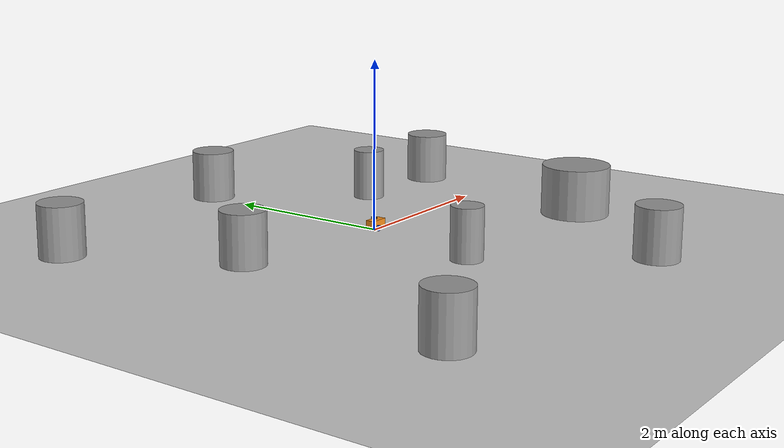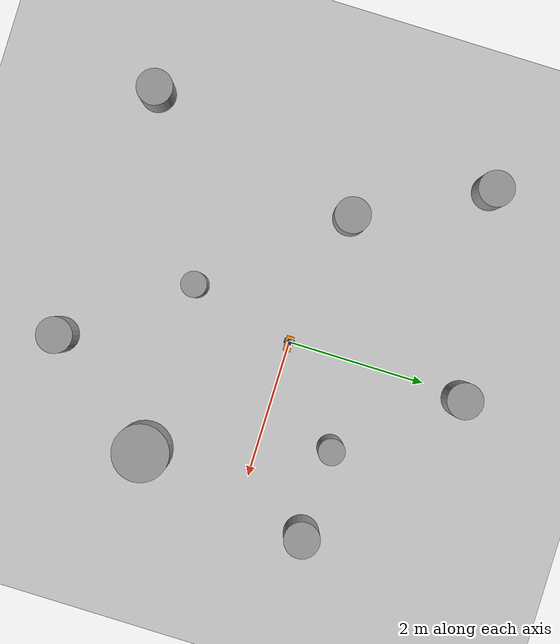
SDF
<sdf version="1.7">
 <world name="default">
  <light name="sun" type="directional">
   <pose>0 0 10 0 -0 0</pose>
   <diffuse>0.8 0.8 0.8 1</diffuse>
   <specular>0.2 0.2 0.2 1</specular>
   <attenuation>
    <range>1000</range>
    <constant>0.9</constant>
    <linear>0.01</linear>
    <quadratic>0.001</quadratic>
   </attenuation>
   <direction>-0.5 0.1 -0.9</direction>
   <spot><inner_angle>0</inner_angle><outer_angle>0</outer_angle><falloff>0</falloff></spot>
  </light>
  <model name="ground_plane">
   <static>1</static>
   <link name="link">
    <collision name="collision">
     <geometry><plane><normal>0 0 1</normal><size>100 100</size></plane></geometry>
     <surface>
      <contact><collide_bitmask>65535</collide_bitmask></contact>
      <friction><ode><mu>100</mu><mu2>50</mu2></ode></friction>
     </surface>
    </collision>
    <visual name="visual">
     <cast_shadows>0</cast_shadows>
     <geometry><plane><normal>0 0 1</normal><size>100 100</size></plane></geometry>
     <material>
      <script><uri>file://media/materials/scripts/gazebo.material</uri><name>Gazebo/Grey</name></script>
     </material>
    </visual>
   </link>
  </model>
  <gravity>0 0 -9.8</gravity>
  <magnetic_field>6e-06 2.3e-05 -4.2e-05</magnetic_field>
  <atmosphere type="adiabatic"/>
  <physics type="ode">
   <max_step_size>0.001</max_step_size>
   <real_time_factor>1</real_time_factor>
   <real_time_update_rate>1000</real_time_update_rate>
  </physics>
  <scene><ambient>0.4 0.4 0.4 1</ambient><background>0.7 0.7 0.7 1</background><shadows>1</shadows></scene>
  <audio><device>default</device></audio>
  <spherical_coordinates>
   <surface_model>EARTH_WGS84</surface_model>
   <latitude_deg>0</latitude_deg>
   <longitude_deg>0</longitude_deg>
   <elevation>0</elevation>
   <heading_deg>0</heading_deg>
  </spherical_coordinates>
  <model name="my_bot">
   <link name="base_link">
    <inertial>
     <pose>0.022817 0 0.055352 0 -0 0</pose>
     <mass>0.71</mass>
     <inertia>
      <ixx>0.00193831</ixx>
      <ixy>0</ixy>
      <ixz>0.000395704</ixz>
      <iyy>0.00367518</iyy>
      <iyz>0</iyz>
      <izz>0.0028686</izz>
     </inertia>
    </inertial>
    <collision name="base_link_fixed_joint_lump__chassis_collision">
     <pose>0.03 0 0.035 0 -0 0</pose>
     <geometry><box><size>0.22 0.11 0.11</size></box></geometry>
    </collision>
    <collision name="base_link_fixed_joint_lump__caster_wheel_collision_1">
     <pose>0.12 0 -0.02 0 -0 0</pose>
     <geometry><sphere><radius>0.015</radius></sphere></geometry>
     <surface><friction><ode><mu>0.001</mu><mu2>0.001</mu2></ode></friction></surface>
    </collision>
    <collision name="base_link_fixed_joint_lump__laser_frame_collision_2">
     <pose>0 0 0.11 0 -0 0</pose>
     <geometry><cylinder><length>0.04</length><radius>0.05</radius></cylinder></geometry>
    </collision>
    <visual name="base_link_fixed_joint_lump__chassis_visual">
     <pose>0.03 0 0.035 0 -0 0</pose>
     <geometry><box><size>0.22 0.11 0.11</size></box></geometry>
     <material>
      <script><name>Gazebo/Orange</name><uri>file://media/materials/scripts/gazebo.material</uri></script>
     </material>
    </visual>
    <visual name="base_link_fixed_joint_lump__caster_wheel_visual_1">
     <pose>0.12 0 -0.02 0 -0 0</pose>
     <geometry><sphere><radius>0.015</radius></sphere></geometry>
     <material>
      <script><name>Gazebo/White</name><uri>file://media/materials/scripts/gazebo.material</uri></script>
     </material>
    </visual>
    <visual name="base_link_fixed_joint_lump__laser_frame_visual_2">
     <pose>0 0 0.11 0 -0 0</pose>
     <geometry><cylinder><length>0.02</length><radius>0.035</radius></cylinder></geometry>
     <material>
      <script><name>Gazebo/Black</name><uri>file://media/materials/scripts/gazebo.material</uri></script>
     </material>
    </visual>
    <sensor name="laser" type="ray">
     <visualize>1</visualize>
     <update_rate>10</update_rate>
     <ray>
      <scan>
       <horizontal>
        <samples>360</samples>
        <min_angle>-3.14</min_angle>
        <max_angle>3.14</max_angle>
        <resolution>1</resolution>
       </horizontal>
       <vertical><samples>1</samples><min_angle>0</min_angle><max_angle>0</max_angle></vertical>
      </scan>
      <range><min>0.3</min><max>12</max></range>
     </ray>
     <plugin name="laser_controller" filename="libgazebo_ros_ray_sensor.so">
      <ros><argument>~/out:=scan</argument></ros>
      <output_type>sensor_msgs/LaserScan</output_type>
      <frame_name>laser_frame</frame_name>
     </plugin>
     <pose>0 0 0.11 0 -0 0</pose>
    </sensor>
   </link>
   <joint name="left_wheel_joint" type="revolute">
    <pose relative_to="base_link">0 0.06 0 -1.5708 0 0</pose>
    <parent>base_link</parent>
    <child>left_wheel</child>
    <axis>
     <xyz>0 0 1</xyz>
     <limit><lower>-1e+16</lower><upper>1e+16</upper></limit>
     <dynamics><spring_reference>0</spring_reference><spring_stiffness>0</spring_stiffness></dynamics>
    </axis>
   </joint>
   <link name="left_wheel">
    <pose relative_to="left_wheel_joint">0 0 0 0 -0 0</pose>
    <inertial>
     <mass>0.05</mass>
     <inertia>
      <ixx>1.81292e-05</ixx>
      <ixy>0</ixy>
      <ixz>0</ixz>
      <iyy>1.81292e-05</iyy>
      <iyz>0</iyz>
      <izz>3.0625e-05</izz>
     </inertia>
    </inertial>
    <collision name="left_wheel_collision">
     <geometry><sphere><radius>0.035</radius></sphere></geometry>
    </collision>
    <visual name="left_wheel_visual">
     <geometry><cylinder><length>0.026</length><radius>0.035</radius></cylinder></geometry>
     <material>
      <script><name>Gazebo/Blue</name><uri>file://media/materials/scripts/gazebo.material</uri></script>
     </material>
    </visual>
   </link>
   <joint name="right_wheel_joint" type="revolute">
    <pose relative_to="base_link">0 -0.06 0 1.5708 -0 0</pose>
    <parent>base_link</parent>
    <child>right_wheel</child>
    <axis>
     <xyz>0 0 -1</xyz>
     <limit><lower>-1e+16</lower><upper>1e+16</upper></limit>
     <dynamics><spring_reference>0</spring_reference><spring_stiffness>0</spring_stiffness></dynamics>
    </axis>
   </joint>
   <link name="right_wheel">
    <pose relative_to="right_wheel_joint">0 0 0 0 -0 0</pose>
    <inertial>
     <mass>0.05</mass>
     <inertia>
      <ixx>1.81292e-05</ixx>
      <ixy>0</ixy>
      <ixz>0</ixz>
      <iyy>1.81292e-05</iyy>
      <iyz>0</iyz>
      <izz>3.0625e-05</izz>
     </inertia>
    </inertial>
    <collision name="right_wheel_collision">
     <geometry><sphere><radius>0.035</radius></sphere></geometry>
    </collision>
    <visual name="right_wheel_visual">
     <geometry><cylinder><length>0.026</length><radius>0.035</radius></cylinder></geometry>
     <material>
      <script><name>Gazebo/Blue</name><uri>file://media/materials/scripts/gazebo.material</uri></script>
     </material>
    </visual>
   </link>
   <static>0</static>
   <plugin name="gazebo_ros2_control" filename="libgazebo_ros2_control.so">
    <parameters>/home/lui/ros_workspaces/dev_ws/src/my_bot/config/my_controllers.yaml</parameters>
    <parameters>/home/lui/ros_workspaces/dev_ws/src/my_bot/config/gazebo_controller_sim_time.yaml</parameters>
   </plugin>
   <pose>-0.008239 -0.000138 0.034998 2.7e-05 -2.1e-05 -0.000415</pose>
  </model>
  <model name="unit_cylinder">
   <pose>-0.389421 -1.50519 0.305853 0 -0 0</pose>
   <link name="link">
    <inertial>
     <mass>1</mass>
     <inertia><ixx>0.145833</ixx><ixy>0</ixy><ixz>0</ixz><iyy>0.145833</iyy><iyz>0</iyz><izz>0.125</izz></inertia>
    </inertial>
    <collision name="collision">
     <geometry><cylinder><radius>0.184416</radius><length>0.611707</length></cylinder></geometry>
    </collision>
    <visual name="visual">
     <geometry><cylinder><radius>0.184416</radius><length>0.611707</length></cylinder></geometry>
     <material>
      <script><name>Gazebo/Grey</name><uri>file://media/materials/scripts/gazebo.material</uri></script>
     </material>
    </visual>
   </link>
  </model>
  <model name="unit_cylinder_clone">
   <pose>0.85105 -3.1485 0.305851 -0 -0 -0</pose>
   <link name="link">
    <inertial>
     <mass>1</mass>
     <inertia><ixx>0.145833</ixx><ixy>0</ixy><ixz>0</ixz><iyy>0.145833</iyy><iyz>0</iyz><izz>0.125</izz></inertia>
    </inertial>
    <collision name="collision">
     <geometry><cylinder><radius>0.258347</radius><length>0.611707</length></cylinder></geometry>
    </collision>
    <visual name="visual">
     <geometry><cylinder><radius>0.258347</radius><length>0.611707</length></cylinder></geometry>
     <material>
      <script><name>Gazebo/Grey</name><uri>file://media/materials/scripts/gazebo.material</uri></script>
     </material>
    </visual>
   </link>
  </model>
  <model name="unit_cylinder_clone_0">
   <pose>2.06406 -1.52662 0.305844 0 -0 0</pose>
   <link name="link">
    <inertial>
     <mass>1</mass>
     <inertia><ixx>0.145833</ixx><ixy>0</ixy><ixz>0</ixz><iyy>0.145833</iyy><iyz>0</iyz><izz>0.125</izz></inertia>
    </inertial>
    <collision name="collision">
     <geometry><cylinder><radius>0.40898</radius><length>0.611707</length></cylinder></geometry>
    </collision>
    <visual name="visual">
     <geometry><cylinder><radius>0.40898</radius><length>0.611707</length></cylinder></geometry>
     <material>
      <script><name>Gazebo/Grey</name><uri>file://media/materials/scripts/gazebo.material</uri></script>
     </material>
    </visual>
   </link>
  </model>
  <model name="unit_cylinder_clone_1">
   <pose>1.2689 1.0014 0.305853 0 -0 0</pose>
   <link name="link">
    <inertial>
     <mass>1</mass>
     <inertia><ixx>0.145833</ixx><ixy>0</ixy><ixz>0</ixz><iyy>0.145833</iyy><iyz>0</iyz><izz>0.125</izz></inertia>
    </inertial>
    <collision name="collision">
     <geometry><cylinder><radius>0.190184</radius><length>0.611707</length></cylinder></geometry>
    </collision>
    <visual name="visual">
     <geometry><cylinder><radius>0.190184</radius><length>0.611707</length></cylinder></geometry>
     <material>
      <script><name>Gazebo/Grey</name><uri>file://media/materials/scripts/gazebo.material</uri></script>
     </material>
    </visual>
   </link>
  </model>
  <model name="unit_cylinder_clone_2">
   <pose>2.55699 0.966211 0.305853 0 -0 0</pose>
   <link name="link">
    <inertial>
     <mass>1</mass>
     <inertia><ixx>0.145833</ixx><ixy>0</ixy><ixz>0</ixz><iyy>0.145833</iyy><iyz>0</iyz><izz>0.125</izz></inertia>
    </inertial>
    <collision name="collision">
     <geometry><cylinder><radius>0.258347</radius><length>0.611707</length></cylinder></geometry>
    </collision>
    <visual name="visual">
     <geometry><cylinder><radius>0.258347</radius><length>0.611707</length></cylinder></geometry>
     <material>
      <script><name>Gazebo/Grey</name><uri>file://media/materials/scripts/gazebo.material</uri></script>
     </material>
    </visual>
   </link>
  </model>
  <model name="unit_cylinder_clone_3">
   <pose>0.053541 2.56373 0.305844 0 -0 0</pose>
   <link name="link">
    <inertial>
     <mass>1</mass>
     <inertia><ixx>0.145833</ixx><ixy>0</ixy><ixz>0</ixz><iyy>0.145833</iyy><iyz>0</iyz><izz>0.125</izz></inertia>
    </inertial>
    <collision name="collision">
     <geometry><cylinder><radius>0.258347</radius><length>0.611707</length></cylinder></geometry>
    </collision>
    <visual name="visual">
     <geometry><cylinder><radius>0.258347</radius><length>0.611707</length></cylinder></geometry>
     <material>
      <script><name>Gazebo/Grey</name><uri>file://media/materials/scripts/gazebo.material</uri></script>
     </material>
    </visual>
   </link>
  </model>
  <model name="unit_cylinder_clone_4">
   <pose>-1.95146 0.318178 0.305853 -0 -0 -0</pose>
   <link name="link">
    <inertial>
     <mass>1</mass>
     <inertia><ixx>0.145833</ixx><ixy>0</ixy><ixz>0</ixz><iyy>0.145833</iyy><iyz>0</iyz><izz>0.125</izz></inertia>
    </inertial>
    <collision name="collision">
     <geometry><cylinder><radius>0.258347</radius><length>0.611707</length></cylinder></geometry>
    </collision>
    <visual name="visual">
     <geometry><cylinder><radius>0.258347</radius><length>0.611707</length></cylinder></geometry>
     <material>
      <script><name>Gazebo/Grey</name><uri>file://media/materials/scripts/gazebo.material</uri></script>
     </material>
    </visual>
   </link>
  </model>
  <model name="unit_cylinder_clone_5">
   <pose>-2.88712 2.11391 0.305844 0 -0 0</pose>
   <link name="link">
    <inertial>
     <mass>1</mass>
     <inertia><ixx>0.145833</ixx><ixy>0</ixy><ixz>0</ixz><iyy>0.145833</iyy><iyz>0</iyz><izz>0.125</izz></inertia>
    </inertial>
    <collision name="collision">
     <geometry><cylinder><radius>0.258347</radius><length>0.611707</length></cylinder></geometry>
    </collision>
    <visual name="visual">
     <geometry><cylinder><radius>0.258347</radius><length>0.611707</length></cylinder></geometry>
     <material>
      <script><name>Gazebo/Grey</name><uri>file://media/materials/scripts/gazebo.material</uri></script>
     </material>
    </visual>
   </link>
  </model>
  <model name="unit_cylinder_clone_6">
   <pose>-2.83864 -2.82906 0.305853 -0 -0 -0</pose>
   <link name="link">
    <inertial>
     <mass>1</mass>
     <inertia><ixx>0.145833</ixx><ixy>0</ixy><ixz>0</ixz><iyy>0.145833</iyy><iyz>0</iyz><izz>0.125</izz></inertia>
    </inertial>
    <collision name="collision">
     <geometry><cylinder><radius>0.258347</radius><length>0.611707</length></cylinder></geometry>
    </collision>
    <visual name="visual">
     <geometry><cylinder><radius>0.258347</radius><length>0.611707</length></cylinder></geometry>
     <material>
      <script><name>Gazebo/Grey</name><uri>file://media/materials/scripts/gazebo.material</uri></script>
     </material>
    </visual>
   </link>
  </model>
 </world>
</sdf>
